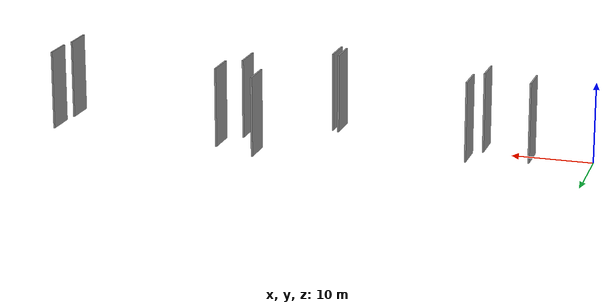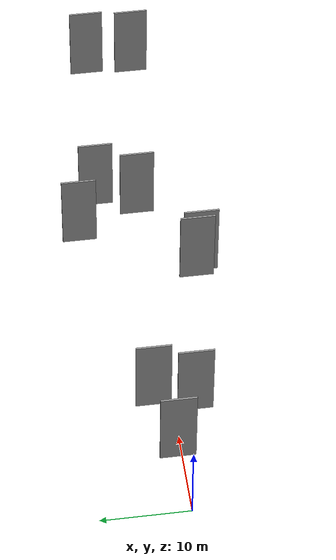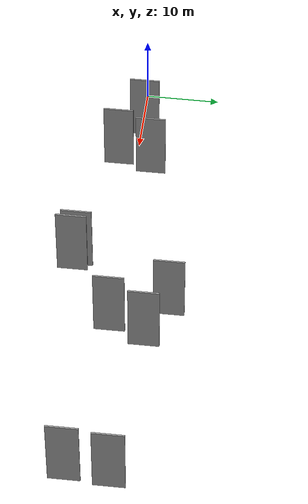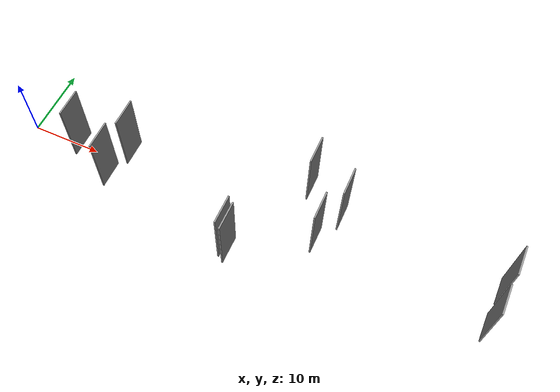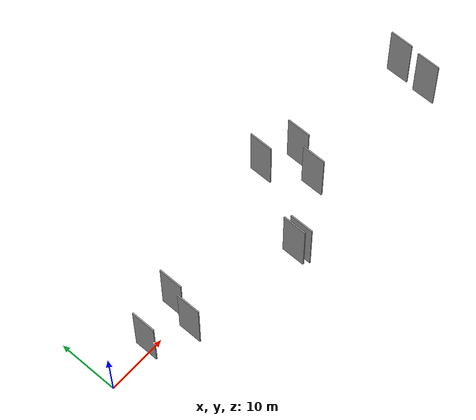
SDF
<sdf version="1.6">
 <world name="default">
  <scene>
   <sky><clouds><speed>12</speed></clouds></sky>
   <ambient>0.4 0.4 0.4 1</ambient>
   <background>0.7 0.7 0.7 1</background>
   <shadows>1</shadows>
  </scene>
  <gravity>0 0 -9.8066</gravity>
  <magnetic_field>6e-06 2.3e-05 -4.2e-05</magnetic_field>
  <physics default="0" name="default_physics" type="ode">
   <ode>
    <solver>
     <type>quick</type>
     <iters>10</iters>
     <sor>1.0</sor>
     <use_dynamic_moi_rescaling>0</use_dynamic_moi_rescaling>
    </solver>
    <constraints>
     <cfm>0</cfm>
     <erp>0.2</erp>
     <contact_max_correcting_vel>100</contact_max_correcting_vel>
     <contact_surface_layer>0.001</contact_surface_layer>
    </constraints>
   </ode>
   <max_step_size>0.004</max_step_size>
   <real_time_factor>1</real_time_factor>
   <real_time_update_rate>250</real_time_update_rate>
  </physics>
  <light name="sun" type="directional">
   <pose>0 0 10 0 0 0</pose>
   <diffuse>0.8 0.8 0.8 1</diffuse>
   <specular>0.2 0.2 0.2 1</specular>
   <attenuation>
    <range>1000</range>
    <constant>0.9</constant>
    <linear>0.01</linear>
    <quadratic>0.001</quadratic>
   </attenuation>
   <direction>-0.5 0.1 -0.9</direction>
  </light>
  <model name="grey_wall_1">
   <static>1</static>
   <pose>67.6947 -2.1941 0.0 0.000000 0.000000 1.570796</pose>
   <link name="link">
    <pose>0 0 5.00 0 0 0</pose>
    <collision name="collision"><geometry><box><size>4.00 0.2 10.00</size></box></geometry></collision>
    <visual name="visual">
     <cast_shadows>0</cast_shadows>
     <geometry><box><size>4.00 0.2 10.00</size></box></geometry>
     <material>
      <script>
       <uri>model://grey_wall/materials/scripts</uri>
       <uri>model://grey_wall/materials/textures</uri>
       <name>vrc/grey_wall</name>
      </script>
     </material>
    </visual>
   </link>
  </model>
  <model name="grey_wall_2">
   <static>1</static>
   <pose>68.0727 3.2902 0.0 0.000000 0.000000 1.570796</pose>
   <link name="link">
    <pose>0 0 5.00 0 0 0</pose>
    <collision name="collision"><geometry><box><size>4.00 0.2 10.00</size></box></geometry></collision>
    <visual name="visual">
     <cast_shadows>0</cast_shadows>
     <geometry><box><size>4.00 0.2 10.00</size></box></geometry>
     <material>
      <script>
       <uri>model://grey_wall/materials/scripts</uri>
       <uri>model://grey_wall/materials/textures</uri>
       <name>vrc/grey_wall</name>
      </script>
     </material>
    </visual>
   </link>
  </model>
  <model name="grey_wall_3">
   <static>1</static>
   <pose>33.8615 -5.9625 0.0 0.000000 0.000000 1.570796</pose>
   <link name="link">
    <pose>0 0 5.00 0 0 0</pose>
    <collision name="collision"><geometry><box><size>4.00 0.2 10.00</size></box></geometry></collision>
    <visual name="visual">
     <cast_shadows>0</cast_shadows>
     <geometry><box><size>4.00 0.2 10.00</size></box></geometry>
     <material>
      <script>
       <uri>model://grey_wall/materials/scripts</uri>
       <uri>model://grey_wall/materials/textures</uri>
       <name>vrc/grey_wall</name>
      </script>
     </material>
    </visual>
   </link>
  </model>
  <model name="grey_wall_4">
   <static>1</static>
   <pose>14.9234 2.1365 0.0 0.000000 0.000000 1.570796</pose>
   <link name="link">
    <pose>0 0 5.00 0 0 0</pose>
    <collision name="collision"><geometry><box><size>4.00 0.2 10.00</size></box></geometry></collision>
    <visual name="visual">
     <cast_shadows>0</cast_shadows>
     <geometry><box><size>4.00 0.2 10.00</size></box></geometry>
     <material>
      <script>
       <uri>model://grey_wall/materials/scripts</uri>
       <uri>model://grey_wall/materials/textures</uri>
       <name>vrc/grey_wall</name>
      </script>
     </material>
    </visual>
   </link>
  </model>
  <model name="grey_wall_5">
   <static>1</static>
   <pose>13.6877 -2.3594 0.0 0.000000 0.000000 1.570796</pose>
   <link name="link">
    <pose>0 0 5.00 0 0 0</pose>
    <collision name="collision"><geometry><box><size>4.00 0.2 10.00</size></box></geometry></collision>
    <visual name="visual">
     <cast_shadows>0</cast_shadows>
     <geometry><box><size>4.00 0.2 10.00</size></box></geometry>
     <material>
      <script>
       <uri>model://grey_wall/materials/scripts</uri>
       <uri>model://grey_wall/materials/textures</uri>
       <name>vrc/grey_wall</name>
      </script>
     </material>
    </visual>
   </link>
  </model>
  <model name="grey_wall_6">
   <static>1</static>
   <pose>45.7579 4.8170 0.0 0.000000 0.000000 1.570796</pose>
   <link name="link">
    <pose>0 0 5.00 0 0 0</pose>
    <collision name="collision"><geometry><box><size>4.00 0.2 10.00</size></box></geometry></collision>
    <visual name="visual">
     <cast_shadows>0</cast_shadows>
     <geometry><box><size>4.00 0.2 10.00</size></box></geometry>
     <material>
      <script>
       <uri>model://grey_wall/materials/scripts</uri>
       <uri>model://grey_wall/materials/textures</uri>
       <name>vrc/grey_wall</name>
      </script>
     </material>
    </visual>
   </link>
  </model>
  <model name="grey_wall_7">
   <static>1</static>
   <pose>33.0107 -5.3945 0.0 0.000000 0.000000 1.570796</pose>
   <link name="link">
    <pose>0 0 5.00 0 0 0</pose>
    <collision name="collision"><geometry><box><size>4.00 0.2 10.00</size></box></geometry></collision>
    <visual name="visual">
     <cast_shadows>0</cast_shadows>
     <geometry><box><size>4.00 0.2 10.00</size></box></geometry>
     <material>
      <script>
       <uri>model://grey_wall/materials/scripts</uri>
       <uri>model://grey_wall/materials/textures</uri>
       <name>vrc/grey_wall</name>
      </script>
     </material>
    </visual>
   </link>
  </model>
  <model name="grey_wall_8">
   <static>1</static>
   <pose>7.4931 0.4593 0.0 0.000000 0.000000 1.570796</pose>
   <link name="link">
    <pose>0 0 5.00 0 0 0</pose>
    <collision name="collision"><geometry><box><size>4.00 0.2 10.00</size></box></geometry></collision>
    <visual name="visual">
     <cast_shadows>0</cast_shadows>
     <geometry><box><size>4.00 0.2 10.00</size></box></geometry>
     <material>
      <script>
       <uri>model://grey_wall/materials/scripts</uri>
       <uri>model://grey_wall/materials/textures</uri>
       <name>vrc/grey_wall</name>
      </script>
     </material>
    </visual>
   </link>
  </model>
  <model name="grey_wall_9">
   <static>1</static>
   <pose>40.2479 7.4093 0.0 0.000000 0.000000 1.570796</pose>
   <link name="link">
    <pose>0 0 5.00 0 0 0</pose>
    <collision name="collision"><geometry><box><size>4.00 0.2 10.00</size></box></geometry></collision>
    <visual name="visual">
     <cast_shadows>0</cast_shadows>
     <geometry><box><size>4.00 0.2 10.00</size></box></geometry>
     <material>
      <script>
       <uri>model://grey_wall/materials/scripts</uri>
       <uri>model://grey_wall/materials/textures</uri>
       <name>vrc/grey_wall</name>
      </script>
     </material>
    </visual>
   </link>
  </model>
  <model name="grey_wall_10">
   <static>1</static>
   <pose>43.7592 0.1745 0.0 0.000000 0.000000 1.570796</pose>
   <link name="link">
    <pose>0 0 5.00 0 0 0</pose>
    <collision name="collision"><geometry><box><size>4.00 0.2 10.00</size></box></geometry></collision>
    <visual name="visual">
     <cast_shadows>0</cast_shadows>
     <geometry><box><size>4.00 0.2 10.00</size></box></geometry>
     <material>
      <script>
       <uri>model://grey_wall/materials/scripts</uri>
       <uri>model://grey_wall/materials/textures</uri>
       <name>vrc/grey_wall</name>
      </script>
     </material>
    </visual>
   </link>
  </model>
 </world>
</sdf>
